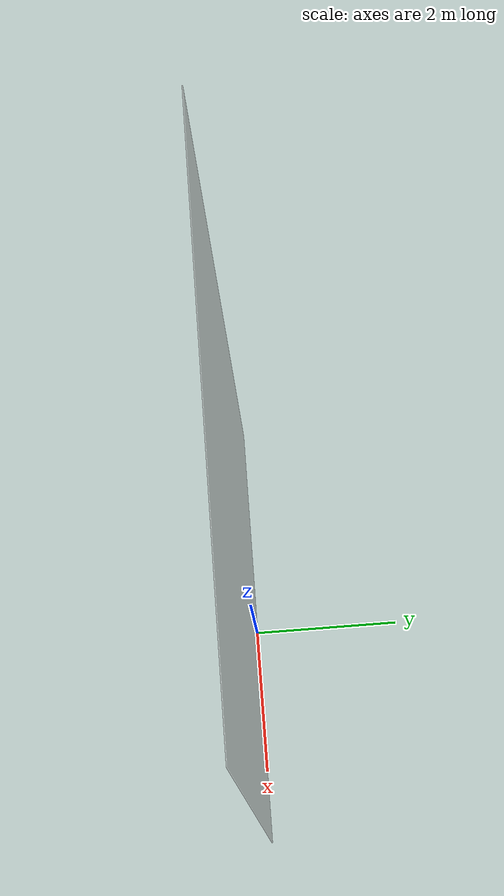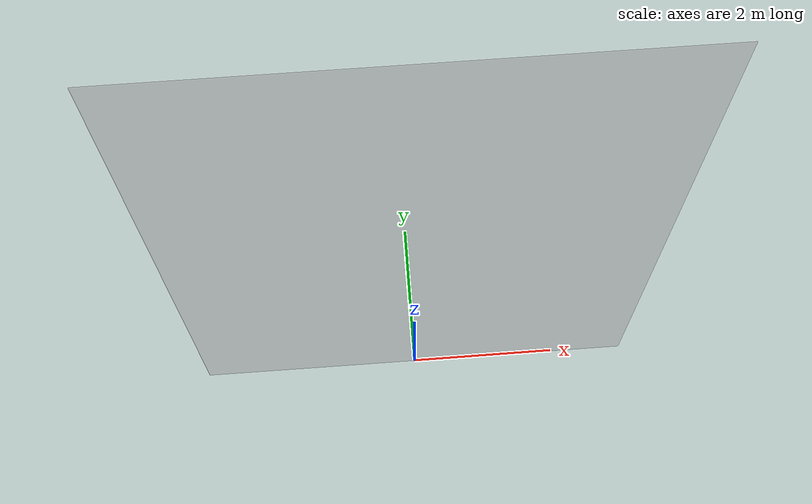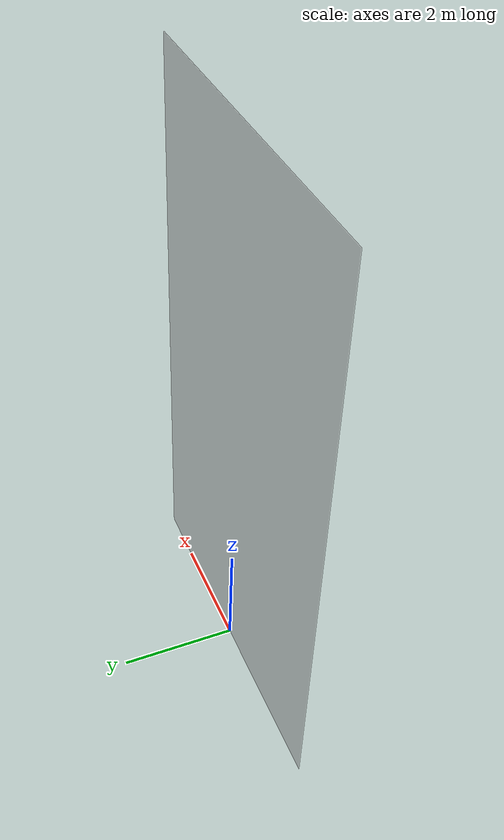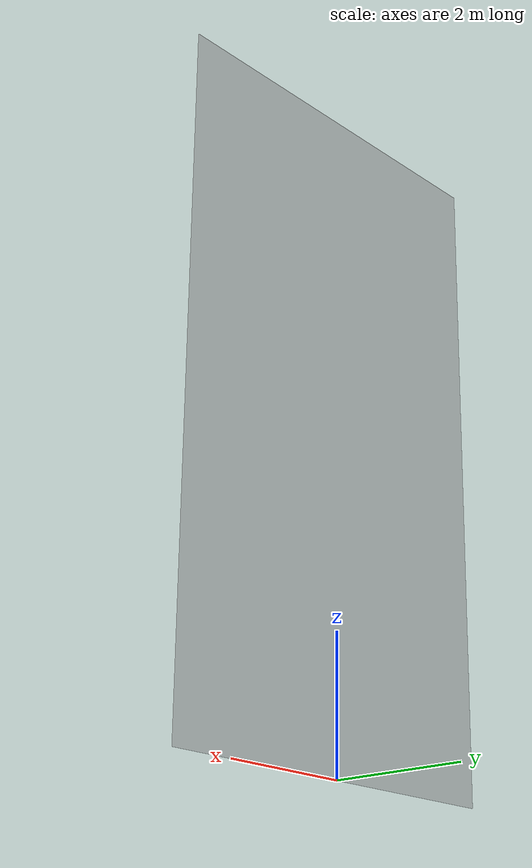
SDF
<?xml version="1.0" ?>

<sdf version="1.5">
<model name='glass_600_1_1000'>
      <static>1</static>
      <link name="link">
        <pose>0 0 5.0 0 0 0</pose>

        <visual name="visual">
          <geometry>
            <box>
              <size>6.0 0.01 10.0</size>
            </box>
          </geometry>
          <material>
            <script>
              <uri>model:///home/stibipet/mrs_workspace/src/radiation_nodes/gazebo_rad_obstacle/gazebo_models/materials/scripts</uri>
              <uri>model:///home/stibipet/mrs_workspace/src/radiation_nodes/gazebo_rad_obstacle/gazebo_models/materials/textures/</uri>
              <name>glass/Image</name>
            </script>
          </material>
        </visual>

      </link>

      <plugin name='glass' filename='libgazebo_rad_obstacle.so'>
        <depth>6.0</depth>
        <width>0.01</width>
        <height>10.0</height>
        <material>glass</material>
        <density>6.22</density> <!-- g/cm^3 -->
        <mac60kev>3.843</mac60kev> <!-- cm^2/g -->
        <mac600kev>0.1138</mac600kev> <!-- cm^2/g -->
      </plugin>

    </model>
  </sdf>
